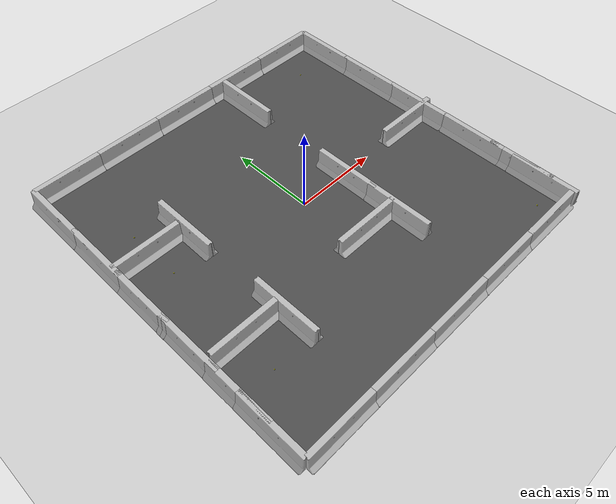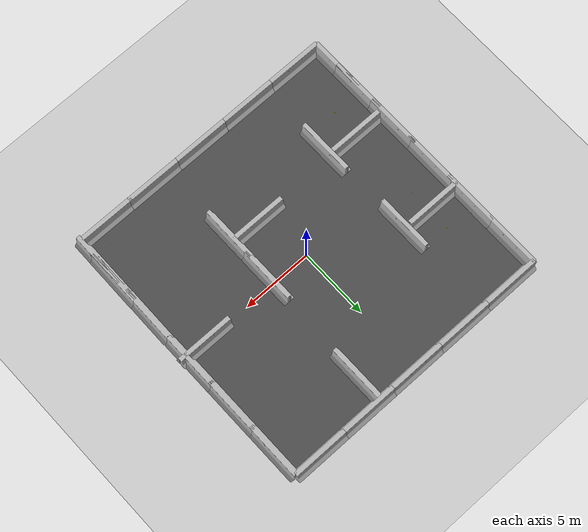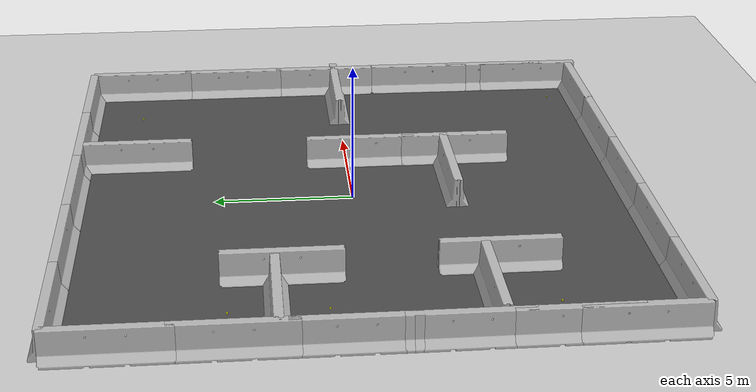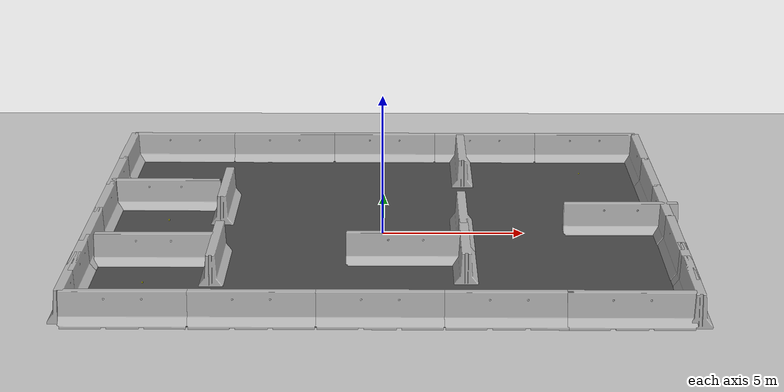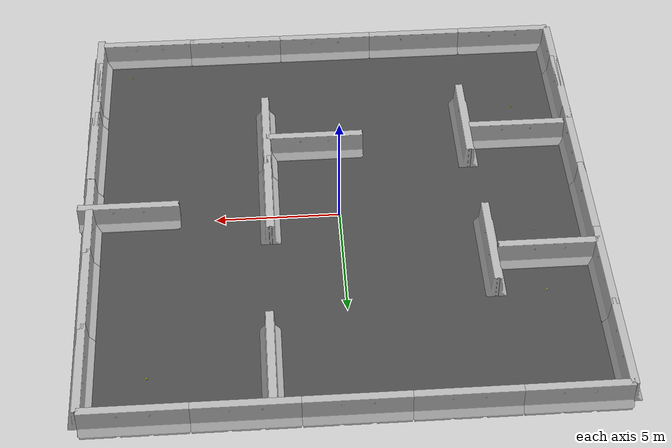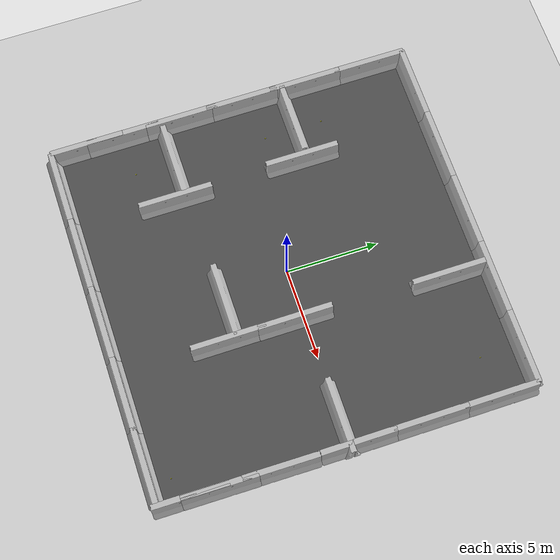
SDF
<sdf version="1.6">
 <world name="default">
  <light name="sun" type="directional">
   <pose>0 0 10 0 -0 0</pose>
   <diffuse>0.8 0.8 0.8 1</diffuse>
   <specular>0.2 0.2 0.2 1</specular>
   <attenuation>
    <range>1000</range>
    <constant>0.9</constant>
    <linear>0.01</linear>
    <quadratic>0.001</quadratic>
   </attenuation>
   <direction>-0.5 0.1 -0.9</direction>
  </light>
  <model name="ground_plane">
   <static>1</static>
   <link name="link">
    <collision name="collision">
     <geometry><plane><normal>0 0 1</normal><size>100 100</size></plane></geometry>
     <surface><friction><ode><mu>100</mu><mu2>50</mu2></ode></friction></surface>
    </collision>
    <visual name="visual">
     <cast_shadows>0</cast_shadows>
     <geometry><plane><normal>0 0 1</normal><size>100 100</size></plane></geometry>
     <material>
      <script><uri>file://media/materials/scripts/gazebo.material</uri><name>Gazebo/Grey</name></script>
     </material>
    </visual>
    <velocity_decay><linear>0</linear><angular>0</angular></velocity_decay>
   </link>
  </model>
  <physics name="default_physics" default="0" type="ode">
   <max_step_size>0.01</max_step_size>
   <real_time_factor>1</real_time_factor>
   <real_time_update_rate>100</real_time_update_rate>
  </physics>
  <scene><ambient>0.4 0.4 0.4 1</ambient><background>0.7 0.7 0.7 1</background><shadows>1</shadows></scene>
  <model name="jersey_barrier">
   <static>1</static>
   <link name="link">
    <visual name="visual">
     <geometry>
      <mesh><uri>model://jersey_barrier/meshes/jersey_barrier.dae</uri><scale>1 1 1</scale></mesh>
     </geometry>
    </visual>
    <collision name="upright">
     <pose>0 0 0.5715 0 -0 0</pose>
     <geometry><box><size>4.06542 0.3063 1.143</size></box></geometry>
    </collision>
    <collision name="base">
     <pose>0 0 0.032258 0 -0 0</pose>
     <geometry><box><size>4.06542 0.8107 0.064516</size></box></geometry>
    </collision>
    <collision name="base2">
     <pose>0 0 0.1 0 -0 0</pose>
     <geometry><box><size>4.06542 0.65 0.1</size></box></geometry>
    </collision>
    <collision name="base3">
     <pose>0 0 0.2 0 -0 0</pose>
     <geometry><box><size>4.06542 0.5 0.1</size></box></geometry>
    </collision>
    <collision name="left-angle">
     <pose>0 -0.224 0.2401 0.9 -0 0</pose>
     <geometry><box><size>4.06542 0.5 0.064516</size></box></geometry>
    </collision>
    <collision name="right-angle">
     <pose>0 0.224 0.2401 -0.9 0 0</pose>
     <geometry><box><size>4.06542 0.5 0.064516</size></box></geometry>
    </collision>
    <velocity_decay><linear>0</linear><angular>0</angular></velocity_decay>
   </link>
   <pose>-8 -10 0 0 -0 0</pose>
  </model>
  <model name="jersey_barrier_0">
   <static>1</static>
   <link name="link">
    <visual name="visual">
     <geometry>
      <mesh><uri>model://jersey_barrier/meshes/jersey_barrier.dae</uri><scale>1 1 1</scale></mesh>
     </geometry>
    </visual>
    <collision name="upright">
     <pose>0 0 0.5715 0 -0 0</pose>
     <geometry><box><size>4.06542 0.3063 1.143</size></box></geometry>
    </collision>
    <collision name="base">
     <pose>0 0 0.032258 0 -0 0</pose>
     <geometry><box><size>4.06542 0.8107 0.064516</size></box></geometry>
    </collision>
    <collision name="base2">
     <pose>0 0 0.1 0 -0 0</pose>
     <geometry><box><size>4.06542 0.65 0.1</size></box></geometry>
    </collision>
    <collision name="base3">
     <pose>0 0 0.2 0 -0 0</pose>
     <geometry><box><size>4.06542 0.5 0.1</size></box></geometry>
    </collision>
    <collision name="left-angle">
     <pose>0 -0.224 0.2401 0.9 -0 0</pose>
     <geometry><box><size>4.06542 0.5 0.064516</size></box></geometry>
    </collision>
    <collision name="right-angle">
     <pose>0 0.224 0.2401 -0.9 0 0</pose>
     <geometry><box><size>4.06542 0.5 0.064516</size></box></geometry>
    </collision>
    <velocity_decay><linear>0</linear><angular>0</angular></velocity_decay>
   </link>
   <pose>-4 -10 0 0 -0 0</pose>
  </model>
  <model name="jersey_barrier_1">
   <static>1</static>
   <link name="link">
    <visual name="visual">
     <geometry>
      <mesh><uri>model://jersey_barrier/meshes/jersey_barrier.dae</uri><scale>1 1 1</scale></mesh>
     </geometry>
    </visual>
    <collision name="upright">
     <pose>0 0 0.5715 0 -0 0</pose>
     <geometry><box><size>4.06542 0.3063 1.143</size></box></geometry>
    </collision>
    <collision name="base">
     <pose>0 0 0.032258 0 -0 0</pose>
     <geometry><box><size>4.06542 0.8107 0.064516</size></box></geometry>
    </collision>
    <collision name="base2">
     <pose>0 0 0.1 0 -0 0</pose>
     <geometry><box><size>4.06542 0.65 0.1</size></box></geometry>
    </collision>
    <collision name="base3">
     <pose>0 0 0.2 0 -0 0</pose>
     <geometry><box><size>4.06542 0.5 0.1</size></box></geometry>
    </collision>
    <collision name="left-angle">
     <pose>0 -0.224 0.2401 0.9 -0 0</pose>
     <geometry><box><size>4.06542 0.5 0.064516</size></box></geometry>
    </collision>
    <collision name="right-angle">
     <pose>0 0.224 0.2401 -0.9 0 0</pose>
     <geometry><box><size>4.06542 0.5 0.064516</size></box></geometry>
    </collision>
    <velocity_decay><linear>0</linear><angular>0</angular></velocity_decay>
   </link>
   <pose>0 -10 0 0 -0 0</pose>
  </model>
  <model name="jersey_barrier_2">
   <static>1</static>
   <link name="link">
    <visual name="visual">
     <geometry>
      <mesh><uri>model://jersey_barrier/meshes/jersey_barrier.dae</uri><scale>1 1 1</scale></mesh>
     </geometry>
    </visual>
    <collision name="upright">
     <pose>0 0 0.5715 0 -0 0</pose>
     <geometry><box><size>4.06542 0.3063 1.143</size></box></geometry>
    </collision>
    <collision name="base">
     <pose>0 0 0.032258 0 -0 0</pose>
     <geometry><box><size>4.06542 0.8107 0.064516</size></box></geometry>
    </collision>
    <collision name="base2">
     <pose>0 0 0.1 0 -0 0</pose>
     <geometry><box><size>4.06542 0.65 0.1</size></box></geometry>
    </collision>
    <collision name="base3">
     <pose>0 0 0.2 0 -0 0</pose>
     <geometry><box><size>4.06542 0.5 0.1</size></box></geometry>
    </collision>
    <collision name="left-angle">
     <pose>0 -0.224 0.2401 0.9 -0 0</pose>
     <geometry><box><size>4.06542 0.5 0.064516</size></box></geometry>
    </collision>
    <collision name="right-angle">
     <pose>0 0.224 0.2401 -0.9 0 0</pose>
     <geometry><box><size>4.06542 0.5 0.064516</size></box></geometry>
    </collision>
    <velocity_decay><linear>0</linear><angular>0</angular></velocity_decay>
   </link>
   <pose>4 -10 0 0 -0 0</pose>
  </model>
  <model name="jersey_barrier_3">
   <static>1</static>
   <link name="link">
    <visual name="visual">
     <geometry>
      <mesh><uri>model://jersey_barrier/meshes/jersey_barrier.dae</uri><scale>1 1 1</scale></mesh>
     </geometry>
    </visual>
    <collision name="upright">
     <pose>0 0 0.5715 0 -0 0</pose>
     <geometry><box><size>4.06542 0.3063 1.143</size></box></geometry>
    </collision>
    <collision name="base">
     <pose>0 0 0.032258 0 -0 0</pose>
     <geometry><box><size>4.06542 0.8107 0.064516</size></box></geometry>
    </collision>
    <collision name="base2">
     <pose>0 0 0.1 0 -0 0</pose>
     <geometry><box><size>4.06542 0.65 0.1</size></box></geometry>
    </collision>
    <collision name="base3">
     <pose>0 0 0.2 0 -0 0</pose>
     <geometry><box><size>4.06542 0.5 0.1</size></box></geometry>
    </collision>
    <collision name="left-angle">
     <pose>0 -0.224 0.2401 0.9 -0 0</pose>
     <geometry><box><size>4.06542 0.5 0.064516</size></box></geometry>
    </collision>
    <collision name="right-angle">
     <pose>0 0.224 0.2401 -0.9 0 0</pose>
     <geometry><box><size>4.06542 0.5 0.064516</size></box></geometry>
    </collision>
    <velocity_decay><linear>0</linear><angular>0</angular></velocity_decay>
   </link>
   <pose>-8 10 0 0 -0 0</pose>
  </model>
  <model name="jersey_barrier_4">
   <static>1</static>
   <link name="link">
    <visual name="visual">
     <geometry>
      <mesh><uri>model://jersey_barrier/meshes/jersey_barrier.dae</uri><scale>1 1 1</scale></mesh>
     </geometry>
    </visual>
    <collision name="upright">
     <pose>0 0 0.5715 0 -0 0</pose>
     <geometry><box><size>4.06542 0.3063 1.143</size></box></geometry>
    </collision>
    <collision name="base">
     <pose>0 0 0.032258 0 -0 0</pose>
     <geometry><box><size>4.06542 0.8107 0.064516</size></box></geometry>
    </collision>
    <collision name="base2">
     <pose>0 0 0.1 0 -0 0</pose>
     <geometry><box><size>4.06542 0.65 0.1</size></box></geometry>
    </collision>
    <collision name="base3">
     <pose>0 0 0.2 0 -0 0</pose>
     <geometry><box><size>4.06542 0.5 0.1</size></box></geometry>
    </collision>
    <collision name="left-angle">
     <pose>0 -0.224 0.2401 0.9 -0 0</pose>
     <geometry><box><size>4.06542 0.5 0.064516</size></box></geometry>
    </collision>
    <collision name="right-angle">
     <pose>0 0.224 0.2401 -0.9 0 0</pose>
     <geometry><box><size>4.06542 0.5 0.064516</size></box></geometry>
    </collision>
    <velocity_decay><linear>0</linear><angular>0</angular></velocity_decay>
   </link>
   <pose>-4 10 0 0 -0 0</pose>
  </model>
  <model name="jersey_barrier_5">
   <static>1</static>
   <link name="link">
    <visual name="visual">
     <geometry>
      <mesh><uri>model://jersey_barrier/meshes/jersey_barrier.dae</uri><scale>1 1 1</scale></mesh>
     </geometry>
    </visual>
    <collision name="upright">
     <pose>0 0 0.5715 0 -0 0</pose>
     <geometry><box><size>4.06542 0.3063 1.143</size></box></geometry>
    </collision>
    <collision name="base">
     <pose>0 0 0.032258 0 -0 0</pose>
     <geometry><box><size>4.06542 0.8107 0.064516</size></box></geometry>
    </collision>
    <collision name="base2">
     <pose>0 0 0.1 0 -0 0</pose>
     <geometry><box><size>4.06542 0.65 0.1</size></box></geometry>
    </collision>
    <collision name="base3">
     <pose>0 0 0.2 0 -0 0</pose>
     <geometry><box><size>4.06542 0.5 0.1</size></box></geometry>
    </collision>
    <collision name="left-angle">
     <pose>0 -0.224 0.2401 0.9 -0 0</pose>
     <geometry><box><size>4.06542 0.5 0.064516</size></box></geometry>
    </collision>
    <collision name="right-angle">
     <pose>0 0.224 0.2401 -0.9 0 0</pose>
     <geometry><box><size>4.06542 0.5 0.064516</size></box></geometry>
    </collision>
    <velocity_decay><linear>0</linear><angular>0</angular></velocity_decay>
   </link>
   <pose>0 10 0 0 -0 0</pose>
  </model>
  <model name="jersey_barrier_6">
   <static>1</static>
   <link name="link">
    <visual name="visual">
     <geometry>
      <mesh><uri>model://jersey_barrier/meshes/jersey_barrier.dae</uri><scale>1 1 1</scale></mesh>
     </geometry>
    </visual>
    <collision name="upright">
     <pose>0 0 0.5715 0 -0 0</pose>
     <geometry><box><size>4.06542 0.3063 1.143</size></box></geometry>
    </collision>
    <collision name="base">
     <pose>0 0 0.032258 0 -0 0</pose>
     <geometry><box><size>4.06542 0.8107 0.064516</size></box></geometry>
    </collision>
    <collision name="base2">
     <pose>0 0 0.1 0 -0 0</pose>
     <geometry><box><size>4.06542 0.65 0.1</size></box></geometry>
    </collision>
    <collision name="base3">
     <pose>0 0 0.2 0 -0 0</pose>
     <geometry><box><size>4.06542 0.5 0.1</size></box></geometry>
    </collision>
    <collision name="left-angle">
     <pose>0 -0.224 0.2401 0.9 -0 0</pose>
     <geometry><box><size>4.06542 0.5 0.064516</size></box></geometry>
    </collision>
    <collision name="right-angle">
     <pose>0 0.224 0.2401 -0.9 0 0</pose>
     <geometry><box><size>4.06542 0.5 0.064516</size></box></geometry>
    </collision>
    <velocity_decay><linear>0</linear><angular>0</angular></velocity_decay>
   </link>
   <pose>4 10 0 0 -0 0</pose>
  </model>
  <model name="jersey_barrier_7">
   <static>1</static>
   <link name="link">
    <visual name="visual">
     <geometry>
      <mesh><uri>model://jersey_barrier/meshes/jersey_barrier.dae</uri><scale>1 1 1</scale></mesh>
     </geometry>
    </visual>
    <collision name="upright">
     <pose>0 0 0.5715 0 -0 0</pose>
     <geometry><box><size>4.06542 0.3063 1.143</size></box></geometry>
    </collision>
    <collision name="base">
     <pose>0 0 0.032258 0 -0 0</pose>
     <geometry><box><size>4.06542 0.8107 0.064516</size></box></geometry>
    </collision>
    <collision name="base2">
     <pose>0 0 0.1 0 -0 0</pose>
     <geometry><box><size>4.06542 0.65 0.1</size></box></geometry>
    </collision>
    <collision name="base3">
     <pose>0 0 0.2 0 -0 0</pose>
     <geometry><box><size>4.06542 0.5 0.1</size></box></geometry>
    </collision>
    <collision name="left-angle">
     <pose>0 -0.224 0.2401 0.9 -0 0</pose>
     <geometry><box><size>4.06542 0.5 0.064516</size></box></geometry>
    </collision>
    <collision name="right-angle">
     <pose>0 0.224 0.2401 -0.9 0 0</pose>
     <geometry><box><size>4.06542 0.5 0.064516</size></box></geometry>
    </collision>
    <velocity_decay><linear>0</linear><angular>0</angular></velocity_decay>
   </link>
   <pose>10 0.42241 0 0 -0 1.57</pose>
  </model>
  <model name="jersey_barrier_8">
   <static>1</static>
   <link name="link">
    <visual name="visual">
     <geometry>
      <mesh><uri>model://jersey_barrier/meshes/jersey_barrier.dae</uri><scale>1 1 1</scale></mesh>
     </geometry>
    </visual>
    <collision name="upright">
     <pose>0 0 0.5715 0 -0 0</pose>
     <geometry><box><size>4.06542 0.3063 1.143</size></box></geometry>
    </collision>
    <collision name="base">
     <pose>0 0 0.032258 0 -0 0</pose>
     <geometry><box><size>4.06542 0.8107 0.064516</size></box></geometry>
    </collision>
    <collision name="base2">
     <pose>0 0 0.1 0 -0 0</pose>
     <geometry><box><size>4.06542 0.65 0.1</size></box></geometry>
    </collision>
    <collision name="base3">
     <pose>0 0 0.2 0 -0 0</pose>
     <geometry><box><size>4.06542 0.5 0.1</size></box></geometry>
    </collision>
    <collision name="left-angle">
     <pose>0 -0.224 0.2401 0.9 -0 0</pose>
     <geometry><box><size>4.06542 0.5 0.064516</size></box></geometry>
    </collision>
    <collision name="right-angle">
     <pose>0 0.224 0.2401 -0.9 0 0</pose>
     <geometry><box><size>4.06542 0.5 0.064516</size></box></geometry>
    </collision>
    <velocity_decay><linear>0</linear><angular>0</angular></velocity_decay>
   </link>
   <pose>10 4.24369 0 0 -0 1.57</pose>
  </model>
  <model name="jersey_barrier_9">
   <static>1</static>
   <link name="link">
    <visual name="visual">
     <geometry>
      <mesh><uri>model://jersey_barrier/meshes/jersey_barrier.dae</uri><scale>1 1 1</scale></mesh>
     </geometry>
    </visual>
    <collision name="upright">
     <pose>0 0 0.5715 0 -0 0</pose>
     <geometry><box><size>4.06542 0.3063 1.143</size></box></geometry>
    </collision>
    <collision name="base">
     <pose>0 0 0.032258 0 -0 0</pose>
     <geometry><box><size>4.06542 0.8107 0.064516</size></box></geometry>
    </collision>
    <collision name="base2">
     <pose>0 0 0.1 0 -0 0</pose>
     <geometry><box><size>4.06542 0.65 0.1</size></box></geometry>
    </collision>
    <collision name="base3">
     <pose>0 0 0.2 0 -0 0</pose>
     <geometry><box><size>4.06542 0.5 0.1</size></box></geometry>
    </collision>
    <collision name="left-angle">
     <pose>0 -0.224 0.2401 0.9 -0 0</pose>
     <geometry><box><size>4.06542 0.5 0.064516</size></box></geometry>
    </collision>
    <collision name="right-angle">
     <pose>0 0.224 0.2401 -0.9 0 0</pose>
     <geometry><box><size>4.06542 0.5 0.064516</size></box></geometry>
    </collision>
    <velocity_decay><linear>0</linear><angular>0</angular></velocity_decay>
   </link>
   <pose>-10 -2.69856 0 0 0 -1.57</pose>
  </model>
  <model name="jersey_barrier_10">
   <static>1</static>
   <link name="link">
    <visual name="visual">
     <geometry>
      <mesh><uri>model://jersey_barrier/meshes/jersey_barrier.dae</uri><scale>1 1 1</scale></mesh>
     </geometry>
    </visual>
    <collision name="upright">
     <pose>0 0 0.5715 0 -0 0</pose>
     <geometry><box><size>4.06542 0.3063 1.143</size></box></geometry>
    </collision>
    <collision name="base">
     <pose>0 0 0.032258 0 -0 0</pose>
     <geometry><box><size>4.06542 0.8107 0.064516</size></box></geometry>
    </collision>
    <collision name="base2">
     <pose>0 0 0.1 0 -0 0</pose>
     <geometry><box><size>4.06542 0.65 0.1</size></box></geometry>
    </collision>
    <collision name="base3">
     <pose>0 0 0.2 0 -0 0</pose>
     <geometry><box><size>4.06542 0.5 0.1</size></box></geometry>
    </collision>
    <collision name="left-angle">
     <pose>0 -0.224 0.2401 0.9 -0 0</pose>
     <geometry><box><size>4.06542 0.5 0.064516</size></box></geometry>
    </collision>
    <collision name="right-angle">
     <pose>0 0.224 0.2401 -0.9 0 0</pose>
     <geometry><box><size>4.06542 0.5 0.064516</size></box></geometry>
    </collision>
    <velocity_decay><linear>0</linear><angular>0</angular></velocity_decay>
   </link>
   <pose>-10 0.72841 0 0 -0 1.57</pose>
  </model>
  <model name="jersey_barrier_11">
   <static>1</static>
   <link name="link">
    <visual name="visual">
     <geometry>
      <mesh><uri>model://jersey_barrier/meshes/jersey_barrier.dae</uri><scale>1 1 1</scale></mesh>
     </geometry>
    </visual>
    <collision name="upright">
     <pose>0 0 0.5715 0 -0 0</pose>
     <geometry><box><size>4.06542 0.3063 1.143</size></box></geometry>
    </collision>
    <collision name="base">
     <pose>0 0 0.032258 0 -0 0</pose>
     <geometry><box><size>4.06542 0.8107 0.064516</size></box></geometry>
    </collision>
    <collision name="base2">
     <pose>0 0 0.1 0 -0 0</pose>
     <geometry><box><size>4.06542 0.65 0.1</size></box></geometry>
    </collision>
    <collision name="base3">
     <pose>0 0 0.2 0 -0 0</pose>
     <geometry><box><size>4.06542 0.5 0.1</size></box></geometry>
    </collision>
    <collision name="left-angle">
     <pose>0 -0.224 0.2401 0.9 -0 0</pose>
     <geometry><box><size>4.06542 0.5 0.064516</size></box></geometry>
    </collision>
    <collision name="right-angle">
     <pose>0 0.224 0.2401 -0.9 0 0</pose>
     <geometry><box><size>4.06542 0.5 0.064516</size></box></geometry>
    </collision>
    <velocity_decay><linear>0</linear><angular>0</angular></velocity_decay>
   </link>
   <pose>-10 4.34791 0 0 -0 1.57</pose>
  </model>
  <model name="jersey_barrier_12">
   <static>1</static>
   <link name="link">
    <visual name="visual">
     <geometry>
      <mesh><uri>model://jersey_barrier/meshes/jersey_barrier.dae</uri><scale>1 1 1</scale></mesh>
     </geometry>
    </visual>
    <collision name="upright">
     <pose>0 0 0.5715 0 -0 0</pose>
     <geometry><box><size>4.06542 0.3063 1.143</size></box></geometry>
    </collision>
    <collision name="base">
     <pose>0 0 0.032258 0 -0 0</pose>
     <geometry><box><size>4.06542 0.8107 0.064516</size></box></geometry>
    </collision>
    <collision name="base2">
     <pose>0 0 0.1 0 -0 0</pose>
     <geometry><box><size>4.06542 0.65 0.1</size></box></geometry>
    </collision>
    <collision name="base3">
     <pose>0 0 0.2 0 -0 0</pose>
     <geometry><box><size>4.06542 0.5 0.1</size></box></geometry>
    </collision>
    <collision name="left-angle">
     <pose>0 -0.224 0.2401 0.9 -0 0</pose>
     <geometry><box><size>4.06542 0.5 0.064516</size></box></geometry>
    </collision>
    <collision name="right-angle">
     <pose>0 0.224 0.2401 -0.9 0 0</pose>
     <geometry><box><size>4.06542 0.5 0.064516</size></box></geometry>
    </collision>
    <velocity_decay><linear>0</linear><angular>0</angular></velocity_decay>
   </link>
   <pose>10 -3.62159 0 0 -0 1.56</pose>
  </model>
  <model name="jersey_barrier_13">
   <static>1</static>
   <link name="link">
    <visual name="visual">
     <geometry>
      <mesh><uri>model://jersey_barrier/meshes/jersey_barrier.dae</uri><scale>1 1 1</scale></mesh>
     </geometry>
    </visual>
    <collision name="upright">
     <pose>0 0 0.5715 0 -0 0</pose>
     <geometry><box><size>4.06542 0.3063 1.143</size></box></geometry>
    </collision>
    <collision name="base">
     <pose>0 0 0.032258 0 -0 0</pose>
     <geometry><box><size>4.06542 0.8107 0.064516</size></box></geometry>
    </collision>
    <collision name="base2">
     <pose>0 0 0.1 0 -0 0</pose>
     <geometry><box><size>4.06542 0.65 0.1</size></box></geometry>
    </collision>
    <collision name="base3">
     <pose>0 0 0.2 0 -0 0</pose>
     <geometry><box><size>4.06542 0.5 0.1</size></box></geometry>
    </collision>
    <collision name="left-angle">
     <pose>0 -0.224 0.2401 0.9 -0 0</pose>
     <geometry><box><size>4.06542 0.5 0.064516</size></box></geometry>
    </collision>
    <collision name="right-angle">
     <pose>0 0.224 0.2401 -0.9 0 0</pose>
     <geometry><box><size>4.06542 0.5 0.064516</size></box></geometry>
    </collision>
    <velocity_decay><linear>0</linear><angular>0</angular></velocity_decay>
   </link>
   <pose>10 8 0 0 -0 1.57</pose>
  </model>
  <model name="jersey_barrier_14">
   <static>1</static>
   <link name="link">
    <visual name="visual">
     <geometry>
      <mesh><uri>model://jersey_barrier/meshes/jersey_barrier.dae</uri><scale>1 1 1</scale></mesh>
     </geometry>
    </visual>
    <collision name="upright">
     <pose>0 0 0.5715 0 -0 0</pose>
     <geometry><box><size>4.06542 0.3063 1.143</size></box></geometry>
    </collision>
    <collision name="base">
     <pose>0 0 0.032258 0 -0 0</pose>
     <geometry><box><size>4.06542 0.8107 0.064516</size></box></geometry>
    </collision>
    <collision name="base2">
     <pose>0 0 0.1 0 -0 0</pose>
     <geometry><box><size>4.06542 0.65 0.1</size></box></geometry>
    </collision>
    <collision name="base3">
     <pose>0 0 0.2 0 -0 0</pose>
     <geometry><box><size>4.06542 0.5 0.1</size></box></geometry>
    </collision>
    <collision name="left-angle">
     <pose>0 -0.224 0.2401 0.9 -0 0</pose>
     <geometry><box><size>4.06542 0.5 0.064516</size></box></geometry>
    </collision>
    <collision name="right-angle">
     <pose>0 0.224 0.2401 -0.9 0 0</pose>
     <geometry><box><size>4.06542 0.5 0.064516</size></box></geometry>
    </collision>
    <velocity_decay><linear>0</linear><angular>0</angular></velocity_decay>
   </link>
   <pose>-10 8.05946 0 0 -0 1.57</pose>
  </model>
  <model name="jersey_barrier_15">
   <static>1</static>
   <link name="link">
    <visual name="visual">
     <geometry>
      <mesh><uri>model://jersey_barrier/meshes/jersey_barrier.dae</uri><scale>1 1 1</scale></mesh>
     </geometry>
    </visual>
    <collision name="upright">
     <pose>0 0 0.5715 0 -0 0</pose>
     <geometry><box><size>4.06542 0.3063 1.143</size></box></geometry>
    </collision>
    <collision name="base">
     <pose>0 0 0.032258 0 -0 0</pose>
     <geometry><box><size>4.06542 0.8107 0.064516</size></box></geometry>
    </collision>
    <collision name="base2">
     <pose>0 0 0.1 0 -0 0</pose>
     <geometry><box><size>4.06542 0.65 0.1</size></box></geometry>
    </collision>
    <collision name="base3">
     <pose>0 0 0.2 0 -0 0</pose>
     <geometry><box><size>4.06542 0.5 0.1</size></box></geometry>
    </collision>
    <collision name="left-angle">
     <pose>0 -0.224 0.2401 0.9 -0 0</pose>
     <geometry><box><size>4.06542 0.5 0.064516</size></box></geometry>
    </collision>
    <collision name="right-angle">
     <pose>0 0.224 0.2401 -0.9 0 0</pose>
     <geometry><box><size>4.06542 0.5 0.064516</size></box></geometry>
    </collision>
    <velocity_decay><linear>0</linear><angular>0</angular></velocity_decay>
   </link>
   <pose>8.45495 0 0 0 -0 0</pose>
  </model>
  <model name="asphalt_plane">
   <static>1</static>
   <link name="link">
    <collision name="collision"><geometry><box><size>20 20 0.1</size></box></geometry></collision>
    <visual name="visual">
     <cast_shadows>0</cast_shadows>
     <geometry><box><size>20 20 0.1</size></box></geometry>
     <material>
      <script>
       <uri>model://asphalt_plane/materials/scripts</uri>
       <uri>model://asphalt_plane/materials/textures</uri>
       <name>vrc/asphalt</name>
      </script>
     </material>
    </visual>
    <velocity_decay><linear>0</linear><angular>0</angular></velocity_decay>
   </link>
   <pose>0.076733 -0.110379 0 0 -0 0</pose>
  </model>
  <gravity>0 0 -9.8</gravity>
  <magnetic_field>6e-06 2.3e-05 -4.2e-05</magnetic_field>
  <atmosphere type="adiabatic"/>
  <spherical_coordinates>
   <surface_model>EARTH_WGS84</surface_model>
   <latitude_deg>0</latitude_deg>
   <longitude_deg>0</longitude_deg>
   <elevation>0</elevation>
   <heading_deg>0</heading_deg>
  </spherical_coordinates>
  <model name="jersey_barrier_15_clone">
   <static>1</static>
   <link name="link">
    <visual name="visual">
     <geometry>
      <mesh><uri>model://jersey_barrier/meshes/jersey_barrier.dae</uri><scale>1 1 1</scale></mesh>
     </geometry>
    </visual>
    <collision name="upright">
     <pose>0 0 0.5715 0 -0 0</pose>
     <geometry><box><size>4.06542 0.3063 1.143</size></box></geometry>
    </collision>
    <collision name="base">
     <pose>0 0 0.032258 0 -0 0</pose>
     <geometry><box><size>4.06542 0.8107 0.064516</size></box></geometry>
    </collision>
    <collision name="base2">
     <pose>0 0 0.1 0 -0 0</pose>
     <geometry><box><size>4.06542 0.65 0.1</size></box></geometry>
    </collision>
    <collision name="base3">
     <pose>0 0 0.2 0 -0 0</pose>
     <geometry><box><size>4.06542 0.5 0.1</size></box></geometry>
    </collision>
    <collision name="left-angle">
     <pose>0 -0.224 0.2401 0.9 -0 0</pose>
     <geometry><box><size>4.06542 0.5 0.064516</size></box></geometry>
    </collision>
    <collision name="right-angle">
     <pose>0 0.224 0.2401 -0.9 0 0</pose>
     <geometry><box><size>4.06542 0.5 0.064516</size></box></geometry>
    </collision>
    <velocity_decay><linear>0</linear><angular>0</angular></velocity_decay>
   </link>
   <pose>8 10 0 0 -0 0</pose>
  </model>
  <model name="jersey_barrier_9_clone">
   <static>1</static>
   <link name="link">
    <visual name="visual">
     <geometry>
      <mesh><uri>model://jersey_barrier/meshes/jersey_barrier.dae</uri><scale>1 1 1</scale></mesh>
     </geometry>
    </visual>
    <collision name="upright">
     <pose>0 0 0.5715 0 -0 0</pose>
     <geometry><box><size>4.06542 0.3063 1.143</size></box></geometry>
    </collision>
    <collision name="base">
     <pose>0 0 0.032258 0 -0 0</pose>
     <geometry><box><size>4.06542 0.8107 0.064516</size></box></geometry>
    </collision>
    <collision name="base2">
     <pose>0 0 0.1 0 -0 0</pose>
     <geometry><box><size>4.06542 0.65 0.1</size></box></geometry>
    </collision>
    <collision name="base3">
     <pose>0 0 0.2 0 -0 0</pose>
     <geometry><box><size>4.06542 0.5 0.1</size></box></geometry>
    </collision>
    <collision name="left-angle">
     <pose>0 -0.224 0.2401 0.9 -0 0</pose>
     <geometry><box><size>4.06542 0.5 0.064516</size></box></geometry>
    </collision>
    <collision name="right-angle">
     <pose>0 0.224 0.2401 -0.9 0 0</pose>
     <geometry><box><size>4.06542 0.5 0.064516</size></box></geometry>
    </collision>
    <velocity_decay><linear>0</linear><angular>0</angular></velocity_decay>
   </link>
   <pose>-10 -5.99657 0 0 0 -1.57</pose>
  </model>
  <model name="jersey_barrier_9_clone_0">
   <static>1</static>
   <link name="link">
    <visual name="visual">
     <geometry>
      <mesh><uri>model://jersey_barrier/meshes/jersey_barrier.dae</uri><scale>1 1 1</scale></mesh>
     </geometry>
    </visual>
    <collision name="upright">
     <pose>0 0 0.5715 0 -0 0</pose>
     <geometry><box><size>4.06542 0.3063 1.143</size></box></geometry>
    </collision>
    <collision name="base">
     <pose>0 0 0.032258 0 -0 0</pose>
     <geometry><box><size>4.06542 0.8107 0.064516</size></box></geometry>
    </collision>
    <collision name="base2">
     <pose>0 0 0.1 0 -0 0</pose>
     <geometry><box><size>4.06542 0.65 0.1</size></box></geometry>
    </collision>
    <collision name="base3">
     <pose>0 0 0.2 0 -0 0</pose>
     <geometry><box><size>4.06542 0.5 0.1</size></box></geometry>
    </collision>
    <collision name="left-angle">
     <pose>0 -0.224 0.2401 0.9 -0 0</pose>
     <geometry><box><size>4.06542 0.5 0.064516</size></box></geometry>
    </collision>
    <collision name="right-angle">
     <pose>0 0.224 0.2401 -0.9 0 0</pose>
     <geometry><box><size>4.06542 0.5 0.064516</size></box></geometry>
    </collision>
    <velocity_decay><linear>0</linear><angular>0</angular></velocity_decay>
   </link>
   <pose>-10.0076 -8 0 0 0 -1.57</pose>
  </model>
  <model name="jersey_barrier_2_clone">
   <static>1</static>
   <link name="link">
    <visual name="visual">
     <geometry>
      <mesh><uri>model://jersey_barrier/meshes/jersey_barrier.dae</uri><scale>1 1 1</scale></mesh>
     </geometry>
    </visual>
    <collision name="upright">
     <pose>0 0 0.5715 0 -0 0</pose>
     <geometry><box><size>4.06542 0.3063 1.143</size></box></geometry>
    </collision>
    <collision name="base">
     <pose>0 0 0.032258 0 -0 0</pose>
     <geometry><box><size>4.06542 0.8107 0.064516</size></box></geometry>
    </collision>
    <collision name="base2">
     <pose>0 0 0.1 0 -0 0</pose>
     <geometry><box><size>4.06542 0.65 0.1</size></box></geometry>
    </collision>
    <collision name="base3">
     <pose>0 0 0.2 0 -0 0</pose>
     <geometry><box><size>4.06542 0.5 0.1</size></box></geometry>
    </collision>
    <collision name="left-angle">
     <pose>0 -0.224 0.2401 0.9 -0 0</pose>
     <geometry><box><size>4.06542 0.5 0.064516</size></box></geometry>
    </collision>
    <collision name="right-angle">
     <pose>0 0.224 0.2401 -0.9 0 0</pose>
     <geometry><box><size>4.06542 0.5 0.064516</size></box></geometry>
    </collision>
    <velocity_decay><linear>0</linear><angular>0</angular></velocity_decay>
   </link>
   <pose>7.82141 -10.0058 0 0 -0 0</pose>
  </model>
  <model name="jersey_barrier_12_clone">
   <static>1</static>
   <link name="link">
    <visual name="visual">
     <geometry>
      <mesh><uri>model://jersey_barrier/meshes/jersey_barrier.dae</uri><scale>1 1 1</scale></mesh>
     </geometry>
    </visual>
    <collision name="upright">
     <pose>0 0 0.5715 0 -0 0</pose>
     <geometry><box><size>4.06542 0.3063 1.143</size></box></geometry>
    </collision>
    <collision name="base">
     <pose>0 0 0.032258 0 -0 0</pose>
     <geometry><box><size>4.06542 0.8107 0.064516</size></box></geometry>
    </collision>
    <collision name="base2">
     <pose>0 0 0.1 0 -0 0</pose>
     <geometry><box><size>4.06542 0.65 0.1</size></box></geometry>
    </collision>
    <collision name="base3">
     <pose>0 0 0.2 0 -0 0</pose>
     <geometry><box><size>4.06542 0.5 0.1</size></box></geometry>
    </collision>
    <collision name="left-angle">
     <pose>0 -0.224 0.2401 0.9 -0 0</pose>
     <geometry><box><size>4.06542 0.5 0.064516</size></box></geometry>
    </collision>
    <collision name="right-angle">
     <pose>0 0.224 0.2401 -0.9 0 0</pose>
     <geometry><box><size>4.06542 0.5 0.064516</size></box></geometry>
    </collision>
    <velocity_decay><linear>0</linear><angular>0</angular></velocity_decay>
   </link>
   <pose>9.98058 -6.78718 0 0 -0 1.56</pose>
  </model>
  <model name="jersey_barrier_12_clone_0">
   <static>1</static>
   <link name="link">
    <visual name="visual">
     <geometry>
      <mesh><uri>model://jersey_barrier/meshes/jersey_barrier.dae</uri><scale>1 1 1</scale></mesh>
     </geometry>
    </visual>
    <collision name="upright">
     <pose>0 0 0.5715 0 -0 0</pose>
     <geometry><box><size>4.06542 0.3063 1.143</size></box></geometry>
    </collision>
    <collision name="base">
     <pose>0 0 0.032258 0 -0 0</pose>
     <geometry><box><size>4.06542 0.8107 0.064516</size></box></geometry>
    </collision>
    <collision name="base2">
     <pose>0 0 0.1 0 -0 0</pose>
     <geometry><box><size>4.06542 0.65 0.1</size></box></geometry>
    </collision>
    <collision name="base3">
     <pose>0 0 0.2 0 -0 0</pose>
     <geometry><box><size>4.06542 0.5 0.1</size></box></geometry>
    </collision>
    <collision name="left-angle">
     <pose>0 -0.224 0.2401 0.9 -0 0</pose>
     <geometry><box><size>4.06542 0.5 0.064516</size></box></geometry>
    </collision>
    <collision name="right-angle">
     <pose>0 0.224 0.2401 -0.9 0 0</pose>
     <geometry><box><size>4.06542 0.5 0.064516</size></box></geometry>
    </collision>
    <velocity_decay><linear>0</linear><angular>0</angular></velocity_decay>
   </link>
   <pose>9.95925 -8.26956 0 0 -0 1.56</pose>
  </model>
  <model name="jersey_barrier_15_clone_0">
   <static>1</static>
   <link name="link">
    <visual name="visual">
     <geometry>
      <mesh><uri>model://jersey_barrier/meshes/jersey_barrier.dae</uri><scale>1 1 1</scale></mesh>
     </geometry>
    </visual>
    <collision name="upright">
     <pose>0 0 0.5715 0 -0 0</pose>
     <geometry><box><size>4.06542 0.3063 1.143</size></box></geometry>
    </collision>
    <collision name="base">
     <pose>0 0 0.032258 0 -0 0</pose>
     <geometry><box><size>4.06542 0.8107 0.064516</size></box></geometry>
    </collision>
    <collision name="base2">
     <pose>0 0 0.1 0 -0 0</pose>
     <geometry><box><size>4.06542 0.65 0.1</size></box></geometry>
    </collision>
    <collision name="base3">
     <pose>0 0 0.2 0 -0 0</pose>
     <geometry><box><size>4.06542 0.5 0.1</size></box></geometry>
    </collision>
    <collision name="left-angle">
     <pose>0 -0.224 0.2401 0.9 -0 0</pose>
     <geometry><box><size>4.06542 0.5 0.064516</size></box></geometry>
    </collision>
    <collision name="right-angle">
     <pose>0 0.224 0.2401 -0.9 0 0</pose>
     <geometry><box><size>4.06542 0.5 0.064516</size></box></geometry>
    </collision>
    <velocity_decay><linear>0</linear><angular>0</angular></velocity_decay>
   </link>
   <pose>-8.04256 3.01504 0 0 -0 0</pose>
  </model>
  <model name="jersey_barrier_8_clone">
   <static>1</static>
   <link name="link">
    <visual name="visual">
     <geometry>
      <mesh><uri>model://jersey_barrier/meshes/jersey_barrier.dae</uri><scale>1 1 1</scale></mesh>
     </geometry>
    </visual>
    <collision name="upright">
     <pose>0 0 0.5715 0 -0 0</pose>
     <geometry><box><size>4.06542 0.3063 1.143</size></box></geometry>
    </collision>
    <collision name="base">
     <pose>0 0 0.032258 0 -0 0</pose>
     <geometry><box><size>4.06542 0.8107 0.064516</size></box></geometry>
    </collision>
    <collision name="base2">
     <pose>0 0 0.1 0 -0 0</pose>
     <geometry><box><size>4.06542 0.65 0.1</size></box></geometry>
    </collision>
    <collision name="base3">
     <pose>0 0 0.2 0 -0 0</pose>
     <geometry><box><size>4.06542 0.5 0.1</size></box></geometry>
    </collision>
    <collision name="left-angle">
     <pose>0 -0.224 0.2401 0.9 -0 0</pose>
     <geometry><box><size>4.06542 0.5 0.064516</size></box></geometry>
    </collision>
    <collision name="right-angle">
     <pose>0 0.224 0.2401 -0.9 0 0</pose>
     <geometry><box><size>4.06542 0.5 0.064516</size></box></geometry>
    </collision>
    <velocity_decay><linear>0</linear><angular>0</angular></velocity_decay>
   </link>
   <pose>3.01017 7.8586 0 0 -0 1.57</pose>
  </model>
  <model name="jersey_barrier_8_clone_0">
   <static>1</static>
   <link name="link">
    <visual name="visual">
     <geometry>
      <mesh><uri>model://jersey_barrier/meshes/jersey_barrier.dae</uri><scale>1 1 1</scale></mesh>
     </geometry>
    </visual>
    <collision name="upright">
     <pose>0 0 0.5715 0 -0 0</pose>
     <geometry><box><size>4.06542 0.3063 1.143</size></box></geometry>
    </collision>
    <collision name="base">
     <pose>0 0 0.032258 0 -0 0</pose>
     <geometry><box><size>4.06542 0.8107 0.064516</size></box></geometry>
    </collision>
    <collision name="base2">
     <pose>0 0 0.1 0 -0 0</pose>
     <geometry><box><size>4.06542 0.65 0.1</size></box></geometry>
    </collision>
    <collision name="base3">
     <pose>0 0 0.2 0 -0 0</pose>
     <geometry><box><size>4.06542 0.5 0.1</size></box></geometry>
    </collision>
    <collision name="left-angle">
     <pose>0 -0.224 0.2401 0.9 -0 0</pose>
     <geometry><box><size>4.06542 0.5 0.064516</size></box></geometry>
    </collision>
    <collision name="right-angle">
     <pose>0 0.224 0.2401 -0.9 0 0</pose>
     <geometry><box><size>4.06542 0.5 0.064516</size></box></geometry>
    </collision>
    <velocity_decay><linear>0</linear><angular>0</angular></velocity_decay>
   </link>
   <pose>2.82289 -0.506126 0 0 -0 1.57</pose>
  </model>
  <model name="jersey_barrier_8_clone_1">
   <static>1</static>
   <link name="link">
    <visual name="visual">
     <geometry>
      <mesh><uri>model://jersey_barrier/meshes/jersey_barrier.dae</uri><scale>1 1 1</scale></mesh>
     </geometry>
    </visual>
    <collision name="upright">
     <pose>0 0 0.5715 0 -0 0</pose>
     <geometry><box><size>4.06542 0.3063 1.143</size></box></geometry>
    </collision>
    <collision name="base">
     <pose>0 0 0.032258 0 -0 0</pose>
     <geometry><box><size>4.06542 0.8107 0.064516</size></box></geometry>
    </collision>
    <collision name="base2">
     <pose>0 0 0.1 0 -0 0</pose>
     <geometry><box><size>4.06542 0.65 0.1</size></box></geometry>
    </collision>
    <collision name="base3">
     <pose>0 0 0.2 0 -0 0</pose>
     <geometry><box><size>4.06542 0.5 0.1</size></box></geometry>
    </collision>
    <collision name="left-angle">
     <pose>0 -0.224 0.2401 0.9 -0 0</pose>
     <geometry><box><size>4.06542 0.5 0.064516</size></box></geometry>
    </collision>
    <collision name="right-angle">
     <pose>0 0.224 0.2401 -0.9 0 0</pose>
     <geometry><box><size>4.06542 0.5 0.064516</size></box></geometry>
    </collision>
    <velocity_decay><linear>0</linear><angular>0</angular></velocity_decay>
   </link>
   <pose>2.80667 -4.06958 0 0 -0 1.57</pose>
  </model>
  <model name="jersey_barrier_8_clone_2">
   <static>1</static>
   <link name="link">
    <visual name="visual">
     <geometry>
      <mesh><uri>model://jersey_barrier/meshes/jersey_barrier.dae</uri><scale>1 1 1</scale></mesh>
     </geometry>
    </visual>
    <collision name="upright">
     <pose>0 0 0.5715 0 -0 0</pose>
     <geometry><box><size>4.06542 0.3063 1.143</size></box></geometry>
    </collision>
    <collision name="base">
     <pose>0 0 0.032258 0 -0 0</pose>
     <geometry><box><size>4.06542 0.8107 0.064516</size></box></geometry>
    </collision>
    <collision name="base2">
     <pose>0 0 0.1 0 -0 0</pose>
     <geometry><box><size>4.06542 0.65 0.1</size></box></geometry>
    </collision>
    <collision name="base3">
     <pose>0 0 0.2 0 -0 0</pose>
     <geometry><box><size>4.06542 0.5 0.1</size></box></geometry>
    </collision>
    <collision name="left-angle">
     <pose>0 -0.224 0.2401 0.9 -0 0</pose>
     <geometry><box><size>4.06542 0.5 0.064516</size></box></geometry>
    </collision>
    <collision name="right-angle">
     <pose>0 0.224 0.2401 -0.9 0 0</pose>
     <geometry><box><size>4.06542 0.5 0.064516</size></box></geometry>
    </collision>
    <velocity_decay><linear>0</linear><angular>0</angular></velocity_decay>
   </link>
   <pose>-5.78945 2.77368 0 0 -0 1.57</pose>
  </model>
  <model name="jersey_barrier_15_clone_1">
   <static>1</static>
   <link name="link">
    <visual name="visual">
     <geometry>
      <mesh><uri>model://jersey_barrier/meshes/jersey_barrier.dae</uri><scale>1 1 1</scale></mesh>
     </geometry>
    </visual>
    <collision name="upright">
     <pose>0 0 0.5715 0 -0 0</pose>
     <geometry><box><size>4.06542 0.3063 1.143</size></box></geometry>
    </collision>
    <collision name="base">
     <pose>0 0 0.032258 0 -0 0</pose>
     <geometry><box><size>4.06542 0.8107 0.064516</size></box></geometry>
    </collision>
    <collision name="base2">
     <pose>0 0 0.1 0 -0 0</pose>
     <geometry><box><size>4.06542 0.65 0.1</size></box></geometry>
    </collision>
    <collision name="base3">
     <pose>0 0 0.2 0 -0 0</pose>
     <geometry><box><size>4.06542 0.5 0.1</size></box></geometry>
    </collision>
    <collision name="left-angle">
     <pose>0 -0.224 0.2401 0.9 -0 0</pose>
     <geometry><box><size>4.06542 0.5 0.064516</size></box></geometry>
    </collision>
    <collision name="right-angle">
     <pose>0 0.224 0.2401 -0.9 0 0</pose>
     <geometry><box><size>4.06542 0.5 0.064516</size></box></geometry>
    </collision>
    <velocity_decay><linear>0</linear><angular>0</angular></velocity_decay>
   </link>
   <pose>0.811488 -3.64308 0 0 -0 0</pose>
  </model>
  <model name="jersey_barrier_15_clone_2">
   <static>1</static>
   <link name="link">
    <visual name="visual">
     <geometry>
      <mesh><uri>model://jersey_barrier/meshes/jersey_barrier.dae</uri><scale>1 1 1</scale></mesh>
     </geometry>
    </visual>
    <collision name="upright">
     <pose>0 0 0.5715 0 -0 0</pose>
     <geometry><box><size>4.06542 0.3063 1.143</size></box></geometry>
    </collision>
    <collision name="base">
     <pose>0 0 0.032258 0 -0 0</pose>
     <geometry><box><size>4.06542 0.8107 0.064516</size></box></geometry>
    </collision>
    <collision name="base2">
     <pose>0 0 0.1 0 -0 0</pose>
     <geometry><box><size>4.06542 0.65 0.1</size></box></geometry>
    </collision>
    <collision name="base3">
     <pose>0 0 0.2 0 -0 0</pose>
     <geometry><box><size>4.06542 0.5 0.1</size></box></geometry>
    </collision>
    <collision name="left-angle">
     <pose>0 -0.224 0.2401 0.9 -0 0</pose>
     <geometry><box><size>4.06542 0.5 0.064516</size></box></geometry>
    </collision>
    <collision name="right-angle">
     <pose>0 0.224 0.2401 -0.9 0 0</pose>
     <geometry><box><size>4.06542 0.5 0.064516</size></box></geometry>
    </collision>
    <velocity_decay><linear>0</linear><angular>0</angular></velocity_decay>
   </link>
   <pose>-7.7187 -3.83237 0 0 -0 0</pose>
  </model>
  <model name="jersey_barrier_8_clone_0_clone">
   <static>1</static>
   <link name="link">
    <visual name="visual">
     <geometry>
      <mesh><uri>model://jersey_barrier/meshes/jersey_barrier.dae</uri><scale>1 1 1</scale></mesh>
     </geometry>
    </visual>
    <collision name="upright">
     <pose>0 0 0.5715 0 -0 0</pose>
     <geometry><box><size>4.06542 0.3063 1.143</size></box></geometry>
    </collision>
    <collision name="base">
     <pose>0 0 0.032258 0 -0 0</pose>
     <geometry><box><size>4.06542 0.8107 0.064516</size></box></geometry>
    </collision>
    <collision name="base2">
     <pose>0 0 0.1 0 -0 0</pose>
     <geometry><box><size>4.06542 0.65 0.1</size></box></geometry>
    </collision>
    <collision name="base3">
     <pose>0 0 0.2 0 -0 0</pose>
     <geometry><box><size>4.06542 0.5 0.1</size></box></geometry>
    </collision>
    <collision name="left-angle">
     <pose>0 -0.224 0.2401 0.9 -0 0</pose>
     <geometry><box><size>4.06542 0.5 0.064516</size></box></geometry>
    </collision>
    <collision name="right-angle">
     <pose>0 0.224 0.2401 -0.9 0 0</pose>
     <geometry><box><size>4.06542 0.5 0.064516</size></box></geometry>
    </collision>
    <velocity_decay><linear>0</linear><angular>0</angular></velocity_decay>
   </link>
   <pose>-5.59919 -4.3572 0 0 -0 1.57</pose>
  </model>
  <model name="treasure">
   <link name="link">
    <inertial>
     <mass>8.303e-05</mass>
     <inertia><ixx>3e-08</ixx><ixy>0</ixy><ixz>0</ixz><iyy>3e-08</iyy><iyz>0</iyz><izz>2e-08</izz></inertia>
    </inertial>
    <visual name="visual">
     <geometry><box><size>0.037915 0.039782 0.055068</size></box></geometry>
     <material>
      <script><name>Gazebo/Grey</name><uri>file://media/materials/scripts/gazebo.material</uri></script>
      <ambient>1 1 0 1</ambient>
      <diffuse>1 1 0 1</diffuse>
      <specular>1 1 0 1</specular>
      <emissive>1 1 0 1</emissive>
      <shader type="vertex"><normal_map>__default__</normal_map></shader>
     </material>
    </visual>
    <collision name="collision">
     <geometry><box><size>0.037915 0.039782 0.055068</size></box></geometry>
     <surface>
      <friction>
       <ode><mu>1</mu><mu2>1</mu2><fdir1>0 0 0</fdir1><slip1>0</slip1><slip2>0</slip2></ode>
       <torsional>
        <coefficient>1</coefficient>
        <patch_radius>0</patch_radius>
        <surface_radius>0</surface_radius>
        <use_patch_radius>1</use_patch_radius>
        <ode><slip>0</slip></ode>
       </torsional>
      </friction>
      <bounce><restitution_coefficient>0</restitution_coefficient><threshold>1e+06</threshold></bounce>
      <contact>
       <collide_without_contact>0</collide_without_contact>
       <collide_without_contact_bitmask>1</collide_without_contact_bitmask>
       <collide_bitmask>1</collide_bitmask>
       <ode>
        <soft_cfm>0</soft_cfm>
        <soft_erp>0.2</soft_erp>
        <kp>1e+13</kp>
        <kd>1</kd>
        <max_vel>0.01</max_vel>
        <min_depth>0</min_depth>
       </ode>
       <bullet>
        <split_impulse>1</split_impulse>
        <split_impulse_penetration_threshold>-0.01</split_impulse_penetration_threshold>
        <soft_cfm>0</soft_cfm>
        <soft_erp>0.2</soft_erp>
        <kp>1e+13</kp>
        <kd>1</kd>
       </bullet>
      </contact>
     </surface>
    </collision>
   </link>
   <static>0</static>
   <pose>8.62649 -8.92531 0.069712 1.57079 0.009591 -0.000524</pose>
  </model>
  <model name="treasure_0">
   <link name="link">
    <inertial>
     <mass>8.303e-05</mass>
     <inertia><ixx>3e-08</ixx><ixy>0</ixy><ixz>0</ixz><iyy>3e-08</iyy><iyz>0</iyz><izz>2e-08</izz></inertia>
    </inertial>
    <visual name="visual">
     <geometry><box><size>0.037915 0.039782 0.055068</size></box></geometry>
     <material>
      <script><name>Gazebo/Grey</name><uri>file://media/materials/scripts/gazebo.material</uri></script>
      <ambient>1 1 0 1</ambient>
      <diffuse>1 1 0 1</diffuse>
      <specular>1 1 0 1</specular>
      <emissive>1 1 0 1</emissive>
      <shader type="vertex"><normal_map>__default__</normal_map></shader>
     </material>
    </visual>
    <collision name="collision">
     <geometry><box><size>0.037915 0.039782 0.055068</size></box></geometry>
     <surface>
      <friction>
       <ode><mu>1</mu><mu2>1</mu2><fdir1>0 0 0</fdir1><slip1>0</slip1><slip2>0</slip2></ode>
       <torsional>
        <coefficient>1</coefficient>
        <patch_radius>0</patch_radius>
        <surface_radius>0</surface_radius>
        <use_patch_radius>1</use_patch_radius>
        <ode><slip>0</slip></ode>
       </torsional>
      </friction>
      <bounce><restitution_coefficient>0</restitution_coefficient><threshold>1e+06</threshold></bounce>
      <contact>
       <collide_without_contact>0</collide_without_contact>
       <collide_without_contact_bitmask>1</collide_without_contact_bitmask>
       <collide_bitmask>1</collide_bitmask>
       <ode>
        <soft_cfm>0</soft_cfm>
        <soft_erp>0.2</soft_erp>
        <kp>1e+13</kp>
        <kd>1</kd>
        <max_vel>0.01</max_vel>
        <min_depth>0</min_depth>
       </ode>
       <bullet>
        <split_impulse>1</split_impulse>
        <split_impulse_penetration_threshold>-0.01</split_impulse_penetration_threshold>
        <soft_cfm>0</soft_cfm>
        <soft_erp>0.2</soft_erp>
        <kp>1e+13</kp>
        <kd>1</kd>
       </bullet>
      </contact>
     </surface>
    </collision>
   </link>
   <static>0</static>
   <pose>-7.89044 -5.95594 0.069712 1.5708 -0.009591 -0.002699</pose>
  </model>
  <model name="treasure_1">
   <link name="link">
    <inertial>
     <mass>8.303e-05</mass>
     <inertia><ixx>3e-08</ixx><ixy>0</ixy><ixz>0</ixz><iyy>3e-08</iyy><iyz>0</iyz><izz>2e-08</izz></inertia>
    </inertial>
    <visual name="visual">
     <geometry><box><size>0.037915 0.039782 0.055068</size></box></geometry>
     <material>
      <script><name>Gazebo/Grey</name><uri>file://media/materials/scripts/gazebo.material</uri></script>
      <ambient>1 1 0 1</ambient>
      <diffuse>1 1 0 1</diffuse>
      <specular>1 1 0 1</specular>
      <emissive>1 1 0 1</emissive>
      <shader type="vertex"><normal_map>__default__</normal_map></shader>
     </material>
    </visual>
    <collision name="collision">
     <geometry><box><size>0.037915 0.039782 0.055068</size></box></geometry>
     <surface>
      <friction>
       <ode><mu>1</mu><mu2>1</mu2><fdir1>0 0 0</fdir1><slip1>0</slip1><slip2>0</slip2></ode>
       <torsional>
        <coefficient>1</coefficient>
        <patch_radius>0</patch_radius>
        <surface_radius>0</surface_radius>
        <use_patch_radius>1</use_patch_radius>
        <ode><slip>0</slip></ode>
       </torsional>
      </friction>
      <bounce><restitution_coefficient>0</restitution_coefficient><threshold>1e+06</threshold></bounce>
      <contact>
       <collide_without_contact>0</collide_without_contact>
       <collide_without_contact_bitmask>1</collide_without_contact_bitmask>
       <collide_bitmask>1</collide_bitmask>
       <ode>
        <soft_cfm>0</soft_cfm>
        <soft_erp>0.2</soft_erp>
        <kp>1e+13</kp>
        <kd>1</kd>
        <max_vel>0.01</max_vel>
        <min_depth>0</min_depth>
       </ode>
       <bullet>
        <split_impulse>1</split_impulse>
        <split_impulse_penetration_threshold>-0.01</split_impulse_penetration_threshold>
        <soft_cfm>0</soft_cfm>
        <soft_erp>0.2</soft_erp>
        <kp>1e+13</kp>
        <kd>1</kd>
       </bullet>
      </contact>
     </surface>
    </collision>
   </link>
   <static>0</static>
   <pose>-7.75928 1.34985 0.069712 1.5708 -0.009591 -0.003561</pose>
  </model>
  <model name="treasure_2">
   <link name="link">
    <inertial>
     <mass>8.303e-05</mass>
     <inertia><ixx>3e-08</ixx><ixy>0</ixy><ixz>0</ixz><iyy>3e-08</iyy><iyz>0</iyz><izz>2e-08</izz></inertia>
    </inertial>
    <visual name="visual">
     <geometry><box><size>0.037915 0.039782 0.055068</size></box></geometry>
     <material>
      <script><name>Gazebo/Grey</name><uri>file://media/materials/scripts/gazebo.material</uri></script>
      <ambient>1 1 0 1</ambient>
      <diffuse>1 1 0 1</diffuse>
      <specular>1 1 0 1</specular>
      <emissive>1 1 0 1</emissive>
      <shader type="vertex"><normal_map>__default__</normal_map></shader>
     </material>
    </visual>
    <collision name="collision">
     <geometry><box><size>0.037915 0.039782 0.055068</size></box></geometry>
     <surface>
      <friction>
       <ode><mu>1</mu><mu2>1</mu2><fdir1>0 0 0</fdir1><slip1>0</slip1><slip2>0</slip2></ode>
       <torsional>
        <coefficient>1</coefficient>
        <patch_radius>0</patch_radius>
        <surface_radius>0</surface_radius>
        <use_patch_radius>1</use_patch_radius>
        <ode><slip>0</slip></ode>
       </torsional>
      </friction>
      <bounce><restitution_coefficient>0</restitution_coefficient><threshold>1e+06</threshold></bounce>
      <contact>
       <collide_without_contact>0</collide_without_contact>
       <collide_without_contact_bitmask>1</collide_without_contact_bitmask>
       <collide_bitmask>1</collide_bitmask>
       <ode>
        <soft_cfm>0</soft_cfm>
        <soft_erp>0.2</soft_erp>
        <kp>1e+13</kp>
        <kd>1</kd>
        <max_vel>0.01</max_vel>
        <min_depth>0</min_depth>
       </ode>
       <bullet>
        <split_impulse>1</split_impulse>
        <split_impulse_penetration_threshold>-0.01</split_impulse_penetration_threshold>
        <soft_cfm>0</soft_cfm>
        <soft_erp>0.2</soft_erp>
        <kp>1e+13</kp>
        <kd>1</kd>
       </bullet>
      </contact>
     </surface>
    </collision>
   </link>
   <static>0</static>
   <pose>-7.7926 4.56244 0.069712 1.5708 -0.009591 -0.003879</pose>
  </model>
  <model name="treasure_3">
   <link name="link">
    <inertial>
     <mass>8.303e-05</mass>
     <inertia><ixx>3e-08</ixx><ixy>0</ixy><ixz>0</ixz><iyy>3e-08</iyy><iyz>0</iyz><izz>2e-08</izz></inertia>
    </inertial>
    <visual name="visual">
     <geometry><box><size>0.037915 0.039782 0.055068</size></box></geometry>
     <material>
      <script><name>Gazebo/Grey</name><uri>file://media/materials/scripts/gazebo.material</uri></script>
      <ambient>1 1 0 1</ambient>
      <diffuse>1 1 0 1</diffuse>
      <specular>1 1 0 1</specular>
      <emissive>1 1 0 1</emissive>
      <shader type="vertex"><normal_map>__default__</normal_map></shader>
     </material>
    </visual>
    <collision name="collision">
     <geometry><box><size>0.037915 0.039782 0.055068</size></box></geometry>
     <surface>
      <friction>
       <ode><mu>1</mu><mu2>1</mu2><fdir1>0 0 0</fdir1><slip1>0</slip1><slip2>0</slip2></ode>
       <torsional>
        <coefficient>1</coefficient>
        <patch_radius>0</patch_radius>
        <surface_radius>0</surface_radius>
        <use_patch_radius>1</use_patch_radius>
        <ode><slip>0</slip></ode>
       </torsional>
      </friction>
      <bounce><restitution_coefficient>0</restitution_coefficient><threshold>1e+06</threshold></bounce>
      <contact>
       <collide_without_contact>0</collide_without_contact>
       <collide_without_contact_bitmask>1</collide_without_contact_bitmask>
       <collide_bitmask>1</collide_bitmask>
       <ode>
        <soft_cfm>0</soft_cfm>
        <soft_erp>0.2</soft_erp>
        <kp>1e+13</kp>
        <kd>1</kd>
        <max_vel>0.01</max_vel>
        <min_depth>0</min_depth>
       </ode>
       <bullet>
        <split_impulse>1</split_impulse>
        <split_impulse_penetration_threshold>-0.01</split_impulse_penetration_threshold>
        <soft_cfm>0</soft_cfm>
        <soft_erp>0.2</soft_erp>
        <kp>1e+13</kp>
        <kd>1</kd>
       </bullet>
      </contact>
     </surface>
    </collision>
   </link>
   <static>0</static>
   <pose>7.62137 7.90648 0.069712 1.57079 0.009591 -0.004248</pose>
  </model>
 </world>
</sdf>
